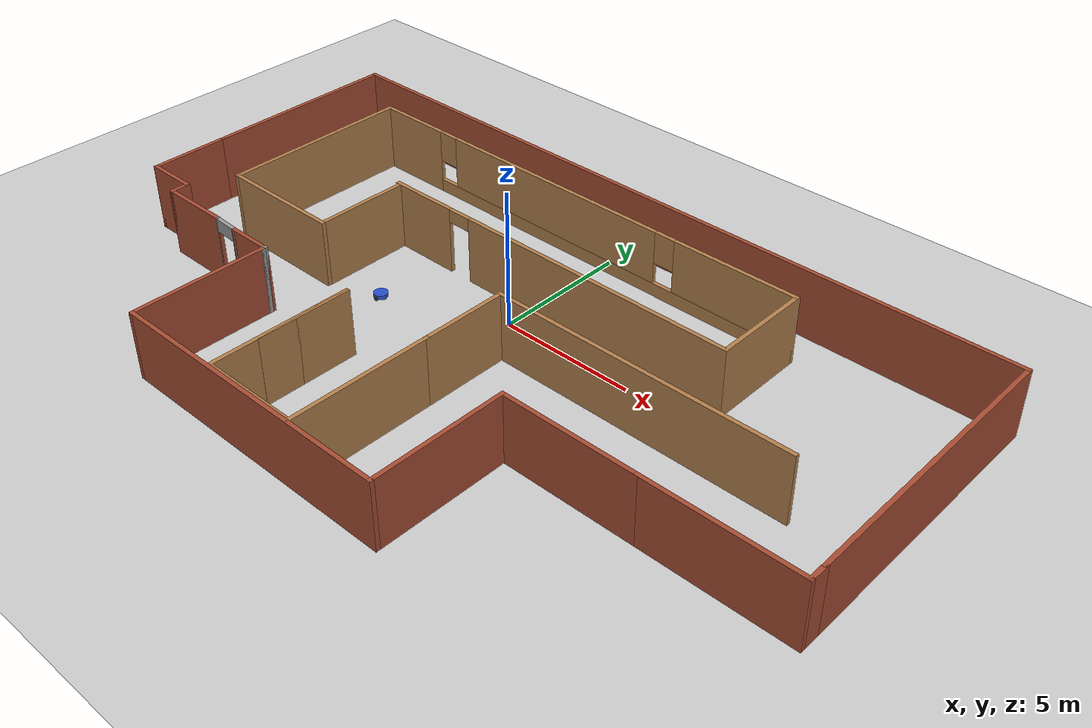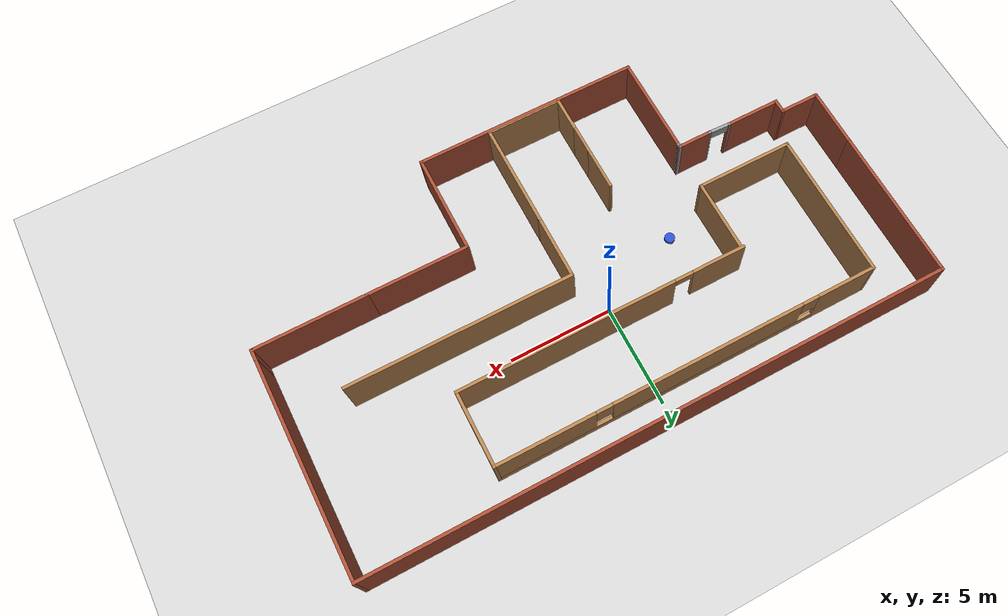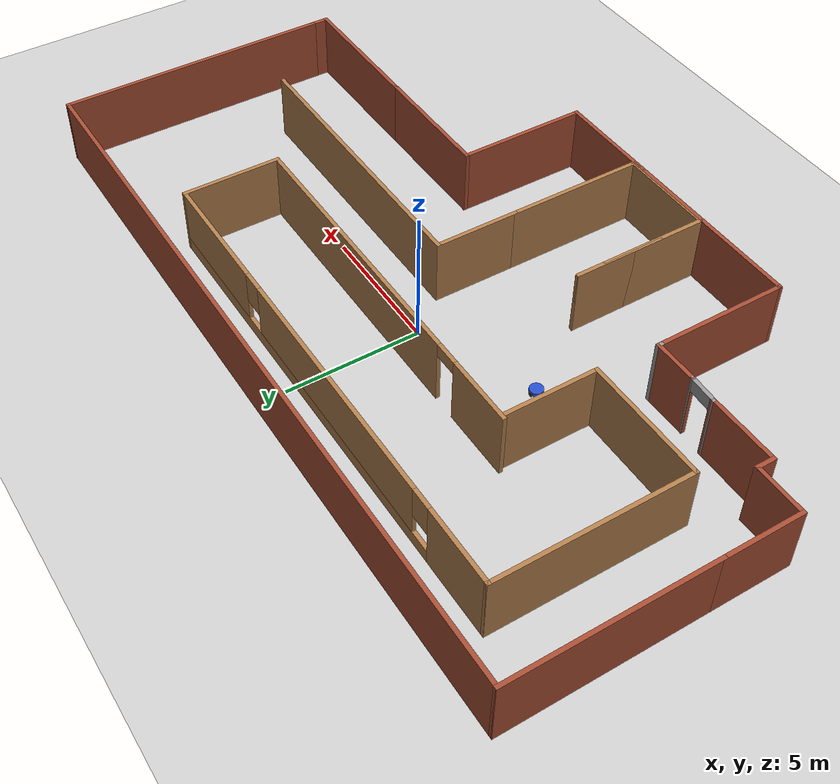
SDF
<sdf version="1.6">
 <world name="default">
  <model name="ground_plane">
   <static>1</static>
   <link name="link">
    <collision name="collision">
     <geometry><plane><normal>0 0 1</normal><size>100 100</size></plane></geometry>
     <surface>
      <contact><collide_bitmask>65535</collide_bitmask></contact>
      <friction><ode><mu>100</mu><mu2>50</mu2></ode></friction>
     </surface>
    </collision>
    <visual name="visual">
     <cast_shadows>0</cast_shadows>
     <geometry><plane><normal>0 0 1</normal><size>100 100</size></plane></geometry>
     <material>
      <script><uri>file://media/materials/scripts/gazebo.material</uri><name>Gazebo/Grey</name></script>
     </material>
    </visual>
   </link>
  </model>
  <model name="Building">
   <pose>0.678239 -1.82117 0 0 -0 0</pose>
   <link name="Wall_10">
    <collision name="Wall_10_Collision">
     <geometry><box><size>2.75 0.15 2.5</size></box></geometry>
     <pose>0 0 1.25 0 -0 0</pose>
    </collision>
    <visual name="Wall_10_Visual">
     <pose>0 0 1.25 0 -0 0</pose>
     <geometry><box><size>2.75 0.15 2.5</size></box></geometry>
     <material>
      <script><uri>file://media/materials/scripts/gazebo.material</uri><name>Gazebo/Bricks</name></script>
      <ambient>1 1 1 1</ambient>
     </material>
     <meta><layer>0</layer></meta>
    </visual>
    <pose>-10.9 -2.9 0 0 -0 0</pose>
   </link>
   <link name="Wall_16">
    <collision name="Wall_16_Collision">
     <geometry><box><size>7.5 0.15 2.5</size></box></geometry>
     <pose>0 0 1.25 0 -0 0</pose>
    </collision>
    <visual name="Wall_16_Visual">
     <pose>0 0 1.25 0 -0 0</pose>
     <geometry><box><size>7.5 0.15 2.5</size></box></geometry>
     <material>
      <script><uri>file://media/materials/scripts/gazebo.material</uri><name>Gazebo/Bricks</name></script>
      <ambient>1 1 1 1</ambient>
     </material>
     <meta><layer>0</layer></meta>
    </visual>
    <pose>-14.05 4.225 0 0 -0 1.5708</pose>
   </link>
   <link name="Wall_17">
    <collision name="Wall_17_Collision">
     <geometry><box><size>28.25 0.15 2.5</size></box></geometry>
     <pose>0 0 1.25 0 -0 0</pose>
    </collision>
    <visual name="Wall_17_Visual">
     <pose>0 0 1.25 0 -0 0</pose>
     <geometry><box><size>28.25 0.15 2.5</size></box></geometry>
     <material>
      <script><uri>file://media/materials/scripts/gazebo.material</uri><name>Gazebo/Bricks</name></script>
      <ambient>1 1 1 1</ambient>
     </material>
     <meta><layer>0</layer></meta>
    </visual>
    <pose>-0 7.9 0 0 -0 0</pose>
   </link>
   <link name="Wall_18">
    <collision name="Wall_18_Collision">
     <geometry><box><size>10.5 0.15 2.5</size></box></geometry>
     <pose>0 0 1.25 0 -0 0</pose>
    </collision>
    <visual name="Wall_18_Visual">
     <pose>0 0 1.25 0 -0 0</pose>
     <geometry><box><size>10.5 0.15 2.5</size></box></geometry>
     <material>
      <script><uri>file://media/materials/scripts/gazebo.material</uri><name>Gazebo/Bricks</name></script>
      <ambient>1 1 1 1</ambient>
     </material>
     <meta><layer>0</layer></meta>
    </visual>
    <pose>14.05 2.725 0 0 -0 -1.5708</pose>
   </link>
   <link name="Wall_19">
    <collision name="Wall_19_Collision">
     <geometry><box><size>0.75 0.15 2.5</size></box></geometry>
     <pose>0 0 1.25 0 -0 0</pose>
    </collision>
    <visual name="Wall_19_Visual">
     <pose>0 0 1.25 0 -0 0</pose>
     <geometry><box><size>0.75 0.15 2.5</size></box></geometry>
     <material>
      <script><uri>file://media/materials/scripts/gazebo.material</uri><name>Gazebo/Bricks</name></script>
      <ambient>1 1 1 1</ambient>
     </material>
     <meta><layer>0</layer></meta>
    </visual>
    <pose>14.05 -2.75 0 0 -0 -1.5708</pose>
   </link>
   <link name="Wall_20">
    <collision name="Wall_20_Collision">
     <geometry><box><size>5.5 0.15 2.5</size></box></geometry>
     <pose>0 0 1.25 0 -0 0</pose>
    </collision>
    <visual name="Wall_20_Visual">
     <pose>0 0 1.25 0 -0 0</pose>
     <geometry><box><size>5.5 0.15 2.5</size></box></geometry>
     <material>
      <script><uri>file://media/materials/scripts/gazebo.material</uri><name>Gazebo/Bricks</name></script>
      <ambient>1 1 1 1</ambient>
     </material>
     <meta><layer>0</layer></meta>
    </visual>
    <pose>11.375 -3.05 0 0 -0 3.14159</pose>
   </link>
   <link name="Wall_21">
    <collision name="Wall_21_Collision">
     <geometry><box><size>0.15 0.15 2.5</size></box></geometry>
     <pose>0 0 1.25 0 -0 0</pose>
    </collision>
    <visual name="Wall_21_Visual">
     <pose>0 0 1.25 0 -0 0</pose>
     <geometry><box><size>0.15 0.15 2.5</size></box></geometry>
     <material>
      <script><uri>file://media/materials/scripts/gazebo.material</uri><name>Gazebo/Grey</name></script>
      <ambient>1 1 1 1</ambient>
     </material>
     <meta><layer>0</layer></meta>
    </visual>
    <pose>8.7 -3.05 0 0 -0 0</pose>
   </link>
   <link name="Wall_22">
    <collision name="Wall_22_Collision">
     <geometry><box><size>5 0.15 2.5</size></box></geometry>
     <pose>0 0 1.25 0 -0 0</pose>
    </collision>
    <visual name="Wall_22_Visual">
     <pose>0 0 1.25 0 -0 0</pose>
     <geometry><box><size>5 0.15 2.5</size></box></geometry>
     <material>
      <script><uri>file://media/materials/scripts/gazebo.material</uri><name>Gazebo/Bricks</name></script>
      <ambient>1 1 1 1</ambient>
     </material>
     <meta><layer>0</layer></meta>
    </visual>
    <pose>6.275 -3.05 0 0 -0 3.14159</pose>
   </link>
   <link name="Wall_23">
    <collision name="Wall_23_Collision">
     <geometry><box><size>5 0.15 2.5</size></box></geometry>
     <pose>0 0 1.25 0 -0 0</pose>
    </collision>
    <visual name="Wall_23_Visual">
     <pose>0 0 1.25 0 -0 0</pose>
     <geometry><box><size>5 0.15 2.5</size></box></geometry>
     <material>
      <script><uri>file://media/materials/scripts/gazebo.material</uri><name>Gazebo/Bricks</name></script>
      <ambient>1 1 1 1</ambient>
     </material>
     <meta><layer>0</layer></meta>
    </visual>
    <pose>3.85 -5.475 0 0 -0 -1.5708</pose>
   </link>
   <link name="Wall_24">
    <collision name="Wall_24_Collision">
     <geometry><box><size>11 0.15 2.5</size></box></geometry>
     <pose>0 0 1.25 0 -0 0</pose>
    </collision>
    <visual name="Wall_24_Visual">
     <pose>0 0 1.25 0 -0 0</pose>
     <geometry><box><size>11 0.15 2.5</size></box></geometry>
     <material>
      <script><uri>file://media/materials/scripts/gazebo.material</uri><name>Gazebo/Bricks</name></script>
      <ambient>1 1 1 1</ambient>
     </material>
     <meta><layer>0</layer></meta>
    </visual>
    <pose>-1.575 -7.9 0 0 -0 3.14159</pose>
   </link>
   <link name="Wall_25">
    <collision name="Wall_25_Collision">
     <geometry><box><size>5 0.15 2.5</size></box></geometry>
     <pose>0 0 1.25 0 -0 0</pose>
    </collision>
    <visual name="Wall_25_Visual">
     <pose>0 0 1.25 0 -0 0</pose>
     <geometry><box><size>5 0.15 2.5</size></box></geometry>
     <material>
      <script><uri>file://media/materials/scripts/gazebo.material</uri><name>Gazebo/Bricks</name></script>
      <ambient>1 1 1 1</ambient>
     </material>
     <meta><layer>0</layer></meta>
    </visual>
    <pose>-7 -5.475 0 0 -0 1.5708</pose>
   </link>
   <link name="Wall_26">
    <collision name="Wall_26_Collision">
     <geometry><box><size>0.15 0.15 2.5</size></box></geometry>
     <pose>0 0 1.25 0 -0 0</pose>
    </collision>
    <visual name="Wall_26_Visual">
     <pose>0 0 1.25 0 -0 0</pose>
     <geometry><box><size>0.15 0.15 2.5</size></box></geometry>
     <material>
      <script><uri>file://media/materials/scripts/gazebo.material</uri><name>Gazebo/Grey</name></script>
      <ambient>1 1 1 1</ambient>
     </material>
     <meta><layer>0</layer></meta>
    </visual>
    <pose>-7 -3.05 0 0 -0 0</pose>
   </link>
   <link name="Wall_27">
    <collision name="Wall_27_Collision">
     <geometry><box><size>0.15 0.15 2.5</size></box></geometry>
     <pose>0 0 1.25 0 -0 0</pose>
    </collision>
    <visual name="Wall_27_Visual">
     <pose>0 0 1.25 0 -0 0</pose>
     <geometry><box><size>0.15 0.15 2.5</size></box></geometry>
     <material>
      <script><uri>file://media/materials/scripts/gazebo.material</uri><name>Gazebo/Grey</name></script>
      <ambient>1 1 1 1</ambient>
     </material>
     <meta><layer>0</layer></meta>
    </visual>
    <pose>-7 -3.05 0 0 -0 0</pose>
   </link>
   <link name="Wall_28">
    <collision name="Wall_28_Collision">
     <geometry><box><size>0.25 0.15 2.5</size></box></geometry>
     <pose>0 0 1.25 0 -0 0</pose>
    </collision>
    <visual name="Wall_28_Visual">
     <pose>0 0 1.25 0 -0 0</pose>
     <geometry><box><size>0.25 0.15 2.5</size></box></geometry>
     <material>
      <script><uri>file://media/materials/scripts/gazebo.material</uri><name>Gazebo/Grey</name></script>
      <ambient>1 1 1 1</ambient>
     </material>
     <meta><layer>0</layer></meta>
    </visual>
    <pose>-7 -3 0 0 -0 1.5708</pose>
   </link>
   <link name="Wall_29">
    <collision name="Wall_29_Collision">
     <geometry><box><size>1.75 0.15 2.5</size></box></geometry>
     <pose>0 0 1.25 0 -0 0</pose>
    </collision>
    <visual name="Wall_29_Visual">
     <pose>0 0 1.25 0 -0 0</pose>
     <geometry><box><size>1.75 0.15 2.5</size></box></geometry>
     <material>
      <script><uri>file://media/materials/scripts/gazebo.material</uri><name>Gazebo/Bricks</name></script>
      <ambient>1 1 1 1</ambient>
     </material>
     <meta><layer>0</layer></meta>
    </visual>
    <pose>-7.8 -2.95 0 0 -0 3.14159</pose>
   </link>
   <link name="Wall_31">
    <collision name="Wall_31_Collision">
     <geometry><box><size>3.5 0.15 2.5</size></box></geometry>
     <pose>0 0 1.25 0 -0 0</pose>
    </collision>
    <visual name="Wall_31_Visual">
     <pose>0 0 1.25 0 -0 0</pose>
     <geometry><box><size>3.5 0.15 2.5</size></box></geometry>
     <material>
      <script><uri>file://media/materials/scripts/gazebo.material</uri><name>Gazebo/Wood</name></script>
      <ambient>1 1 1 1</ambient>
     </material>
     <meta><layer>0</layer></meta>
    </visual>
    <pose>-6.82135 0.966771 0 0 -0 -1.5708</pose>
   </link>
   <link name="Wall_32">
    <collision name="Wall_32_Collision">
     <geometry><box><size>4.75 0.15 2.5</size></box></geometry>
     <pose>0 0 1.25 0 -0 0</pose>
    </collision>
    <visual name="Wall_32_Visual">
     <pose>0 0 1.25 0 -0 0</pose>
     <geometry><box><size>4.75 0.15 2.5</size></box></geometry>
     <material>
      <script><uri>file://media/materials/scripts/gazebo.material</uri><name>Gazebo/Wood</name></script>
      <ambient>1 1 1 1</ambient>
     </material>
     <meta><layer>0</layer></meta>
    </visual>
    <pose>-9.12135 -0.70823 0 0 -0 3.14159</pose>
   </link>
   <link name="Wall_33">
    <collision name="Wall_33_Collision">
     <geometry><box><size>7.25 0.15 2.5</size></box></geometry>
     <pose>0 0 1.25 0 -0 0</pose>
    </collision>
    <visual name="Wall_33_Visual">
     <pose>0 0 1.25 0 -0 0</pose>
     <geometry><box><size>7.25 0.15 2.5</size></box></geometry>
     <material>
      <script><uri>file://media/materials/scripts/gazebo.material</uri><name>Gazebo/Wood</name></script>
      <ambient>1 1 1 1</ambient>
     </material>
     <meta><layer>0</layer></meta>
    </visual>
    <pose>-11.4214 2.84177 0 0 -0 1.5708</pose>
   </link>
   <link name="Wall_34">
    <pose>-2.12135 6.39177 0 0 -0 0</pose>
    <visual name="Wall_34_Visual_0">
     <pose>-7.91049 0 1.25 0 -0 0</pose>
     <geometry><box><size>2.92903 0.15 2.5</size></box></geometry>
     <material>
      <script><uri>file://media/materials/scripts/gazebo.material</uri><name>Gazebo/Wood</name></script>
      <ambient>1 1 1 1</ambient>
     </material>
     <meta><layer>0</layer></meta>
    </visual>
    <collision name="Wall_34_Collision_0">
     <geometry><box><size>2.92903 0.15 2.5</size></box></geometry>
     <pose>-7.91049 0 1.25 0 -0 0</pose>
    </collision>
    <visual name="Wall_34_Visual_1">
     <pose>1.46452 0 0.25 0 -0 0</pose>
     <geometry><box><size>15.821 0.15 0.5</size></box></geometry>
     <material>
      <script><uri>file://media/materials/scripts/gazebo.material</uri><name>Gazebo/Wood</name></script>
      <ambient>1 1 1 1</ambient>
     </material>
     <meta><layer>0</layer></meta>
    </visual>
    <collision name="Wall_34_Collision_1">
     <geometry><box><size>15.821 0.15 0.5</size></box></geometry>
     <pose>1.46452 0 0.25 0 -0 0</pose>
    </collision>
    <visual name="Wall_34_Visual_2">
     <pose>-0.937402 0 1.5 0 -0 0</pose>
     <geometry><box><size>9.41714 0.15 2</size></box></geometry>
     <material>
      <script><uri>file://media/materials/scripts/gazebo.material</uri><name>Gazebo/Wood</name></script>
      <ambient>1 1 1 1</ambient>
     </material>
     <meta><layer>0</layer></meta>
    </visual>
    <collision name="Wall_34_Collision_2">
     <geometry><box><size>9.41714 0.15 2</size></box></geometry>
     <pose>-0.937402 0 1.5 0 -0 0</pose>
    </collision>
    <visual name="Wall_34_Visual_3">
     <pose>6.97308 0 1.5 0 -0 0</pose>
     <geometry><box><size>4.80383 0.15 2</size></box></geometry>
     <material>
      <script><uri>file://media/materials/scripts/gazebo.material</uri><name>Gazebo/Wood</name></script>
      <ambient>1 1 1 1</ambient>
     </material>
     <meta><layer>0</layer></meta>
    </visual>
    <collision name="Wall_34_Collision_3">
     <geometry><box><size>4.80383 0.15 2</size></box></geometry>
     <pose>6.97308 0 1.5 0 -0 0</pose>
    </collision>
    <visual name="Wall_34_Visual_4">
     <pose>-6.04597 0 1.9 0 -0 0</pose>
     <geometry><box><size>0.8 0.15 1.2</size></box></geometry>
     <material>
      <script><uri>file://media/materials/scripts/gazebo.material</uri><name>Gazebo/Wood</name></script>
      <ambient>1 1 1 1</ambient>
     </material>
     <meta><layer>0</layer></meta>
    </visual>
    <collision name="Wall_34_Collision_4">
     <geometry><box><size>0.8 0.15 1.2</size></box></geometry>
     <pose>-6.04597 0 1.9 0 -0 0</pose>
    </collision>
    <visual name="Wall_34_Visual_5">
     <pose>4.17117 0 1.9 0 -0 0</pose>
     <geometry><box><size>0.8 0.15 1.2</size></box></geometry>
     <material>
      <script><uri>file://media/materials/scripts/gazebo.material</uri><name>Gazebo/Wood</name></script>
      <ambient>1 1 1 1</ambient>
     </material>
     <meta><layer>0</layer></meta>
    </visual>
    <collision name="Wall_34_Collision_5">
     <geometry><box><size>0.8 0.15 1.2</size></box></geometry>
     <pose>4.17117 0 1.9 0 -0 0</pose>
    </collision>
   </link>
   <link name="Wall_35">
    <collision name="Wall_35_Collision">
     <geometry><box><size>3.75 0.15 2.5</size></box></geometry>
     <pose>0 0 1.25 0 -0 0</pose>
    </collision>
    <visual name="Wall_35_Visual">
     <pose>0 0 1.25 0 -0 0</pose>
     <geometry><box><size>3.75 0.15 2.5</size></box></geometry>
     <material>
      <script><uri>file://media/materials/scripts/gazebo.material</uri><name>Gazebo/Wood</name></script>
      <ambient>1 1 1 1</ambient>
     </material>
     <meta><layer>0</layer></meta>
    </visual>
    <pose>7.17865 4.59177 0 0 -0 -1.5708</pose>
   </link>
   <link name="Wall_36">
    <pose>0.128645 2.79177 0 0 -0 3.14159</pose>
    <visual name="Wall_36_Visual_0">
     <pose>-1.78083 0 1.25 0 -0 0</pose>
     <geometry><box><size>10.6883 0.15 2.5</size></box></geometry>
     <material>
      <script><uri>file://media/materials/scripts/gazebo.material</uri><name>Gazebo/Wood</name></script>
      <ambient>1 1 1 1</ambient>
     </material>
     <meta><layer>0</layer></meta>
    </visual>
    <collision name="Wall_36_Collision_0">
     <geometry><box><size>10.6883 0.15 2.5</size></box></geometry>
     <pose>-1.78083 0 1.25 0 -0 0</pose>
    </collision>
    <visual name="Wall_36_Visual_1">
     <pose>5.79417 0 1.25 0 -0 0</pose>
     <geometry><box><size>2.66166 0.15 2.5</size></box></geometry>
     <material>
      <script><uri>file://media/materials/scripts/gazebo.material</uri><name>Gazebo/Wood</name></script>
      <ambient>1 1 1 1</ambient>
     </material>
     <meta><layer>0</layer></meta>
    </visual>
    <collision name="Wall_36_Collision_1">
     <geometry><box><size>2.66166 0.15 2.5</size></box></geometry>
     <pose>5.79417 0 1.25 0 -0 0</pose>
    </collision>
    <visual name="Wall_36_Visual_2">
     <pose>4.01334 0 2.25 0 -0 0</pose>
     <geometry><box><size>0.9 0.15 0.5</size></box></geometry>
     <material>
      <script><uri>file://media/materials/scripts/gazebo.material</uri><name>Gazebo/Wood</name></script>
      <ambient>1 1 1 1</ambient>
     </material>
     <meta><layer>0</layer></meta>
    </visual>
    <collision name="Wall_36_Collision_2">
     <geometry><box><size>0.9 0.15 0.5</size></box></geometry>
     <pose>4.01334 0 2.25 0 -0 0</pose>
    </collision>
   </link>
   <link name="Wall_38">
    <pose>-9.1 -2.925 0 0 -0 -0.049958</pose>
    <visual name="Wall_38_Visual_0">
     <pose>-0.521361 0 1.25 0 -0 0</pose>
     <geometry><box><size>0.108527 0.15 2.5</size></box></geometry>
     <material>
      <script><uri>file://media/materials/scripts/gazebo.material</uri><name>Gazebo/Grey</name></script>
      <ambient>1 1 1 1</ambient>
     </material>
     <meta><layer>0</layer></meta>
    </visual>
    <collision name="Wall_38_Collision_0">
     <geometry><box><size>0.108527 0.15 2.5</size></box></geometry>
     <pose>-0.521361 0 1.25 0 -0 0</pose>
    </collision>
    <visual name="Wall_38_Visual_1">
     <pose>0.504264 0 1.25 0 -0 0</pose>
     <geometry><box><size>0.142722 0.15 2.5</size></box></geometry>
     <material>
      <script><uri>file://media/materials/scripts/gazebo.material</uri><name>Gazebo/Grey</name></script>
      <ambient>1 1 1 1</ambient>
     </material>
     <meta><layer>0</layer></meta>
    </visual>
    <collision name="Wall_38_Collision_1">
     <geometry><box><size>0.142722 0.15 2.5</size></box></geometry>
     <pose>0.504264 0 1.25 0 -0 0</pose>
    </collision>
    <visual name="Wall_38_Visual_2">
     <pose>-0.017097 0 2.25 0 -0 0</pose>
     <geometry><box><size>0.9 0.15 0.5</size></box></geometry>
     <material>
      <script><uri>file://media/materials/scripts/gazebo.material</uri><name>Gazebo/Grey</name></script>
      <ambient>1 1 1 1</ambient>
     </material>
     <meta><layer>0</layer></meta>
    </visual>
    <collision name="Wall_38_Collision_2">
     <geometry><box><size>0.9 0.15 0.5</size></box></geometry>
     <pose>-0.017097 0 2.25 0 -0 0</pose>
    </collision>
   </link>
   <link name="Wall_41">
    <collision name="Wall_41_Collision">
     <geometry><box><size>3.5 0.15 2.5</size></box></geometry>
     <pose>0 0 1.25 0 -0 0</pose>
    </collision>
    <visual name="Wall_41_Visual">
     <pose>0 0 1.25 0 -0 0</pose>
     <geometry><box><size>3.5 0.15 2.5</size></box></geometry>
     <material>
      <script><uri>file://media/materials/scripts/gazebo.material</uri><name>Gazebo/Wood</name></script>
      <ambient>1 1 1 1</ambient>
     </material>
     <meta><layer>0</layer></meta>
    </visual>
    <pose>-3.1974 -4.40362 0 0 -0 1.5708</pose>
   </link>
   <link name="Wall_42">
    <collision name="Wall_42_Collision">
     <geometry><box><size>5.25 0.15 2.5</size></box></geometry>
     <pose>0 0 1.25 0 -0 0</pose>
    </collision>
    <visual name="Wall_42_Visual">
     <pose>0 0 1.25 0 -0 0</pose>
     <geometry><box><size>5.25 0.15 2.5</size></box></geometry>
     <material>
      <script><uri>file://media/materials/scripts/gazebo.material</uri><name>Gazebo/Wood</name></script>
      <ambient>1 1 1 1</ambient>
     </material>
     <meta><layer>0</layer></meta>
    </visual>
    <pose>-3.1974 -5.27862 0 0 -0 -1.5708</pose>
   </link>
   <link name="Wall_43">
    <collision name="Wall_43_Collision">
     <geometry><box><size>3.75 0.15 2.5</size></box></geometry>
     <pose>0 0 1.25 0 -0 0</pose>
    </collision>
    <visual name="Wall_43_Visual">
     <pose>0 0 1.25 0 -0 0</pose>
     <geometry><box><size>3.75 0.15 2.5</size></box></geometry>
     <material>
      <script><uri>file://media/materials/scripts/gazebo.material</uri><name>Gazebo/Wood</name></script>
      <ambient>1 1 1 1</ambient>
     </material>
     <meta><layer>0</layer></meta>
    </visual>
    <pose>-1.3974 -7.82862 0 0 -0 0</pose>
   </link>
   <link name="Wall_44">
    <collision name="Wall_44_Collision">
     <geometry><box><size>5.25 0.15 2.5</size></box></geometry>
     <pose>0 0 1.25 0 -0 0</pose>
    </collision>
    <visual name="Wall_44_Visual">
     <pose>0 0 1.25 0 -0 0</pose>
     <geometry><box><size>5.25 0.15 2.5</size></box></geometry>
     <material>
      <script><uri>file://media/materials/scripts/gazebo.material</uri><name>Gazebo/Wood</name></script>
      <ambient>1 1 1 1</ambient>
     </material>
     <meta><layer>0</layer></meta>
    </visual>
    <pose>0.4026 -5.27862 0 0 -0 1.5708</pose>
   </link>
   <link name="Wall_45">
    <collision name="Wall_45_Collision">
     <geometry><box><size>3.25 0.15 2.5</size></box></geometry>
     <pose>0 0 1.25 0 -0 0</pose>
    </collision>
    <visual name="Wall_45_Visual">
     <pose>0 0 1.25 0 -0 0</pose>
     <geometry><box><size>3.25 0.15 2.5</size></box></geometry>
     <material>
      <script><uri>file://media/materials/scripts/gazebo.material</uri><name>Gazebo/Wood</name></script>
      <ambient>1 1 1 1</ambient>
     </material>
     <meta><layer>0</layer></meta>
    </visual>
    <pose>0.4026 -1.17862 0 0 -0 1.5708</pose>
   </link>
   <link name="Wall_46">
    <collision name="Wall_46_Collision">
     <geometry><box><size>11 0.15 2.5</size></box></geometry>
     <pose>0 0 1.25 0 -0 0</pose>
    </collision>
    <visual name="Wall_46_Visual">
     <pose>0 0 1.25 0 -0 0</pose>
     <geometry><box><size>11 0.15 2.5</size></box></geometry>
     <material>
      <script><uri>file://media/materials/scripts/gazebo.material</uri><name>Gazebo/Wood</name></script>
      <ambient>1 1 1 1</ambient>
     </material>
     <meta><layer>0</layer></meta>
    </visual>
    <pose>5.8276 0.371382 0 0 -0 0</pose>
   </link>
   <link name="Wall_7">
    <collision name="Wall_7_Collision">
     <geometry><box><size>3 0.15 2.5</size></box></geometry>
     <pose>0 0 1.25 0 -0 0</pose>
    </collision>
    <visual name="Wall_7_Visual">
     <pose>0 0 1.25 0 -0 0</pose>
     <geometry><box><size>3 0.15 2.5</size></box></geometry>
     <material>
      <script><uri>file://media/materials/scripts/gazebo.material</uri><name>Gazebo/Bricks</name></script>
      <ambient>1 1 1 1</ambient>
     </material>
     <meta><layer>0</layer></meta>
    </visual>
    <pose>-14.05 -0.875 0 0 -0 -1.5708</pose>
   </link>
   <link name="Wall_8">
    <collision name="Wall_8_Collision">
     <geometry><box><size>2 0.15 2.5</size></box></geometry>
     <pose>0 0 1.25 0 -0 0</pose>
    </collision>
    <visual name="Wall_8_Visual">
     <pose>0 0 1.25 0 -0 0</pose>
     <geometry><box><size>2 0.15 2.5</size></box></geometry>
     <material>
      <script><uri>file://media/materials/scripts/gazebo.material</uri><name>Gazebo/Bricks</name></script>
      <ambient>1 1 1 1</ambient>
     </material>
     <meta><layer>0</layer></meta>
    </visual>
    <pose>-13.125 -2.3 0 0 -0 0</pose>
   </link>
   <link name="Wall_9">
    <collision name="Wall_9_Collision">
     <geometry><box><size>0.75 0.15 2.5</size></box></geometry>
     <pose>0 0 1.25 0 -0 0</pose>
    </collision>
    <visual name="Wall_9_Visual">
     <pose>0 0 1.25 0 -0 0</pose>
     <geometry><box><size>0.75 0.15 2.5</size></box></geometry>
     <material>
      <script><uri>file://media/materials/scripts/gazebo.material</uri><name>Gazebo/Bricks</name></script>
      <ambient>1 1 1 1</ambient>
     </material>
     <meta><layer>0</layer></meta>
    </visual>
    <pose>-12.2 -2.6 0 0 -0 -1.5708</pose>
   </link>
   <static>1</static>
  </model>
  <model name="HumanoidRobot">
   <link name="link_0">
    <pose>0 -0 0.04 0 -0 0</pose>
    <inertial>
     <mass>1</mass>
     <inertia><ixx>0.145833</ixx><ixy>0</ixy><ixz>0</ixz><iyy>0.145833</iyy><iyz>0</iyz><izz>0.125</izz></inertia>
    </inertial>
    <visual name="visual">
     <geometry><cylinder><radius>0.25</radius><length>0.15</length></cylinder></geometry>
     <material>
      <lighting>1</lighting>
      <script><uri>file://media/materials/scripts/gazebo.material</uri><name>Gazebo/Blue</name></script>
      <ambient>0.13 0.44 0.7 1</ambient>
      <diffuse>0 0 0 1</diffuse>
      <specular>0.1 0.1 0.1 1</specular>
      <emissive>0 0 0 1</emissive>
      <shader type="vertex"><normal_map>__default__</normal_map></shader>
     </material>
    </visual>
    <collision name="collision">
     <geometry><cylinder><radius>0.25</radius><length>0.15</length></cylinder></geometry>
     <surface>
      <friction>
       <ode><mu>1</mu><mu2>1</mu2><fdir1>0 0 0</fdir1><slip1>0</slip1><slip2>0</slip2></ode>
       <torsional>
        <coefficient>1</coefficient>
        <patch_radius>0</patch_radius>
        <surface_radius>0</surface_radius>
        <use_patch_radius>1</use_patch_radius>
        <ode><slip>0</slip></ode>
       </torsional>
      </friction>
      <bounce><restitution_coefficient>0</restitution_coefficient><threshold>1e+06</threshold></bounce>
      <contact>
       <collide_without_contact>0</collide_without_contact>
       <collide_without_contact_bitmask>1</collide_without_contact_bitmask>
       <collide_bitmask>1</collide_bitmask>
       <ode>
        <soft_cfm>0</soft_cfm>
        <soft_erp>0.2</soft_erp>
        <kp>1e+13</kp>
        <kd>1</kd>
        <max_vel>0.01</max_vel>
        <min_depth>0</min_depth>
       </ode>
       <bullet>
        <split_impulse>1</split_impulse>
        <split_impulse_penetration_threshold>-0.01</split_impulse_penetration_threshold>
        <soft_cfm>0</soft_cfm>
        <soft_erp>0.2</soft_erp>
        <kp>1e+13</kp>
        <kd>1</kd>
       </bullet>
      </contact>
     </surface>
    </collision>
   </link>
   <link name="link_1">
    <pose>0 0.2 -0.01 0 -0 0</pose>
    <inertial>
     <mass>1</mass>
     <inertia><ixx>0.145833</ixx><ixy>0</ixy><ixz>0</ixz><iyy>0.145833</iyy><iyz>0</iyz><izz>0.125</izz></inertia>
    </inertial>
    <visual name="visual">
     <pose>0 0 0 1.5708 -0 0</pose>
     <geometry><cylinder><radius>0.1</radius><length>0.1</length></cylinder></geometry>
     <material>
      <lighting>1</lighting>
      <script><uri>file://media/materials/scripts/gazebo.material</uri><name>Gazebo/Black</name></script>
      <ambient>0 0 0 1</ambient>
      <diffuse>0 0 0 1</diffuse>
      <specular>0.1 0.1 0.1 1</specular>
      <emissive>0 0 0 1</emissive>
      <shader type="vertex"><normal_map>__default__</normal_map></shader>
     </material>
    </visual>
    <collision name="collision">
     <pose>0 0 0 1.5708 -0 0</pose>
     <geometry><cylinder><radius>0.1</radius><length>0.1</length></cylinder></geometry>
     <surface>
      <friction>
       <ode><mu>1</mu><mu2>1</mu2><fdir1>0 0 0</fdir1><slip1>0</slip1><slip2>0</slip2></ode>
       <torsional>
        <coefficient>1</coefficient>
        <patch_radius>0</patch_radius>
        <surface_radius>0</surface_radius>
        <use_patch_radius>1</use_patch_radius>
        <ode><slip>0</slip></ode>
       </torsional>
      </friction>
      <bounce><restitution_coefficient>0</restitution_coefficient><threshold>1e+06</threshold></bounce>
      <contact>
       <collide_without_contact>0</collide_without_contact>
       <collide_without_contact_bitmask>1</collide_without_contact_bitmask>
       <collide_bitmask>1</collide_bitmask>
       <ode>
        <soft_cfm>0</soft_cfm>
        <soft_erp>0.2</soft_erp>
        <kp>1e+13</kp>
        <kd>1</kd>
        <max_vel>0.01</max_vel>
        <min_depth>0</min_depth>
       </ode>
       <bullet>
        <split_impulse>1</split_impulse>
        <split_impulse_penetration_threshold>-0.01</split_impulse_penetration_threshold>
        <soft_cfm>0</soft_cfm>
        <soft_erp>0.2</soft_erp>
        <kp>1e+13</kp>
        <kd>1</kd>
       </bullet>
      </contact>
     </surface>
    </collision>
   </link>
   <link name="link_1_clone">
    <pose>-0 -0.2 -0.01 0 -0 0</pose>
    <inertial>
     <mass>1</mass>
     <inertia><ixx>0.145833</ixx><ixy>0</ixy><ixz>0</ixz><iyy>0.145833</iyy><iyz>0</iyz><izz>0.125</izz></inertia>
    </inertial>
    <visual name="visual">
     <pose>0 0 0 1.5708 -0 0</pose>
     <geometry><cylinder><radius>0.1</radius><length>0.1</length></cylinder></geometry>
     <material>
      <lighting>1</lighting>
      <script><uri>file://media/materials/scripts/gazebo.material</uri><name>Gazebo/Black</name></script>
      <ambient>0 0 0 1</ambient>
      <diffuse>0 0 0 1</diffuse>
      <specular>0.1 0.1 0.1 1</specular>
      <emissive>0 0 0 1</emissive>
      <shader type="vertex"><normal_map>__default__</normal_map></shader>
     </material>
    </visual>
    <collision name="collision">
     <pose>0 0 0 1.5708 -0 0</pose>
     <geometry><cylinder><radius>0.1</radius><length>0.1</length></cylinder></geometry>
     <surface>
      <friction>
       <ode><mu>1</mu><mu2>1</mu2><fdir1>0 0 0</fdir1><slip1>0</slip1><slip2>0</slip2></ode>
       <torsional>
        <coefficient>1</coefficient>
        <patch_radius>0</patch_radius>
        <surface_radius>0</surface_radius>
        <use_patch_radius>1</use_patch_radius>
        <ode><slip>0</slip></ode>
       </torsional>
      </friction>
      <bounce><restitution_coefficient>0</restitution_coefficient><threshold>1e+06</threshold></bounce>
      <contact>
       <collide_without_contact>0</collide_without_contact>
       <collide_without_contact_bitmask>1</collide_without_contact_bitmask>
       <collide_bitmask>1</collide_bitmask>
       <ode>
        <soft_cfm>0</soft_cfm>
        <soft_erp>0.2</soft_erp>
        <kp>1e+13</kp>
        <kd>1</kd>
        <max_vel>0.01</max_vel>
        <min_depth>0</min_depth>
       </ode>
       <bullet>
        <split_impulse>1</split_impulse>
        <split_impulse_penetration_threshold>-0.01</split_impulse_penetration_threshold>
        <soft_cfm>0</soft_cfm>
        <soft_erp>0.2</soft_erp>
        <kp>1e+13</kp>
        <kd>1</kd>
       </bullet>
      </contact>
     </surface>
    </collision>
   </link>
   <link name="link_2">
    <pose>-0.15 0 -0.01 0 -0 0</pose>
    <inertial>
     <mass>1</mass>
     <inertia><ixx>0.1</ixx><ixy>0</ixy><ixz>0</ixz><iyy>0.1</iyy><iyz>0</iyz><izz>0.1</izz></inertia>
    </inertial>
    <visual name="visual">
     <geometry><sphere><radius>0.1</radius></sphere></geometry>
     <material>
      <lighting>1</lighting>
      <script><uri>file://media/materials/scripts/gazebo.material</uri><name>Gazebo/Grey</name></script>
      <ambient>0.3 0.3 0.3 1</ambient>
      <diffuse>0.7 0.7 0.7 1</diffuse>
      <specular>0.01 0.01 0.01 1</specular>
      <emissive>0 0 0 1</emissive>
      <shader type="vertex"><normal_map>__default__</normal_map></shader>
     </material>
    </visual>
    <collision name="collision">
     <geometry><sphere><radius>0.1</radius></sphere></geometry>
     <surface>
      <friction>
       <ode><mu>0</mu><mu2>0</mu2><fdir1>0 0 0</fdir1><slip1>1</slip1><slip2>1</slip2></ode>
       <torsional>
        <coefficient>1</coefficient>
        <patch_radius>0</patch_radius>
        <surface_radius>0</surface_radius>
        <use_patch_radius>1</use_patch_radius>
        <ode><slip>0</slip></ode>
       </torsional>
      </friction>
      <bounce><restitution_coefficient>0</restitution_coefficient><threshold>1e+06</threshold></bounce>
      <contact>
       <collide_without_contact>0</collide_without_contact>
       <collide_without_contact_bitmask>1</collide_without_contact_bitmask>
       <collide_bitmask>1</collide_bitmask>
       <ode>
        <soft_cfm>0</soft_cfm>
        <soft_erp>0.2</soft_erp>
        <kp>1e+13</kp>
        <kd>1</kd>
        <max_vel>0.01</max_vel>
        <min_depth>0</min_depth>
       </ode>
       <bullet>
        <split_impulse>1</split_impulse>
        <split_impulse_penetration_threshold>-0.01</split_impulse_penetration_threshold>
        <soft_cfm>0</soft_cfm>
        <soft_erp>0.2</soft_erp>
        <kp>1e+13</kp>
        <kd>1</kd>
       </bullet>
      </contact>
     </surface>
    </collision>
   </link>
   <link name="link_2_clone">
    <pose>0.15 0 -0.01 0 -0 0</pose>
    <inertial>
     <mass>1</mass>
     <inertia><ixx>0.1</ixx><ixy>0</ixy><ixz>0</ixz><iyy>0.1</iyy><iyz>0</iyz><izz>0.1</izz></inertia>
    </inertial>
    <visual name="visual">
     <geometry><sphere><radius>0.1</radius></sphere></geometry>
     <material>
      <lighting>1</lighting>
      <script><uri>file://media/materials/scripts/gazebo.material</uri><name>Gazebo/Grey</name></script>
      <ambient>0.3 0.3 0.3 1</ambient>
      <diffuse>0.7 0.7 0.7 1</diffuse>
      <specular>0.01 0.01 0.01 1</specular>
      <emissive>0 0 0 1</emissive>
      <shader type="vertex"><normal_map>__default__</normal_map></shader>
     </material>
    </visual>
    <collision name="collision">
     <geometry><sphere><radius>0.1</radius></sphere></geometry>
     <surface>
      <friction>
       <ode><mu>0</mu><mu2>0</mu2><fdir1>0 0 0</fdir1><slip1>1</slip1><slip2>1</slip2></ode>
       <torsional>
        <coefficient>1</coefficient>
        <patch_radius>0</patch_radius>
        <surface_radius>0</surface_radius>
        <use_patch_radius>1</use_patch_radius>
        <ode><slip>0</slip></ode>
       </torsional>
      </friction>
      <bounce><restitution_coefficient>0</restitution_coefficient><threshold>1e+06</threshold></bounce>
      <contact>
       <collide_without_contact>0</collide_without_contact>
       <collide_without_contact_bitmask>1</collide_without_contact_bitmask>
       <collide_bitmask>1</collide_bitmask>
       <ode>
        <soft_cfm>0</soft_cfm>
        <soft_erp>0.2</soft_erp>
        <kp>1e+13</kp>
        <kd>1</kd>
        <max_vel>0.01</max_vel>
        <min_depth>0</min_depth>
       </ode>
       <bullet>
        <split_impulse>1</split_impulse>
        <split_impulse_penetration_threshold>-0.01</split_impulse_penetration_threshold>
        <soft_cfm>0</soft_cfm>
        <soft_erp>0.2</soft_erp>
        <kp>1e+13</kp>
        <kd>1</kd>
       </bullet>
      </contact>
     </surface>
    </collision>
   </link>
   <joint name="link_0_JOINT_1" type="revolute">
    <parent>link_0</parent>
    <child>link_1</child>
    <axis>
     <xyz>0 -1 0</xyz>
     <limit>
      <lower>-1.79769e+308</lower>
      <upper>1.79769e+308</upper>
      <effort>-1</effort>
      <velocity>-1</velocity>
     </limit>
     <dynamics>
      <spring_reference>0</spring_reference>
      <spring_stiffness>0</spring_stiffness>
      <damping>0</damping>
      <friction>0</friction>
     </dynamics>
     <use_parent_model_frame>0</use_parent_model_frame>
    </axis>
    <physics>
     <ode><limit><cfm>0</cfm><erp>0.2</erp></limit><suspension><cfm>0</cfm><erp>0.2</erp></suspension></ode>
    </physics>
   </joint>
   <joint name="link_0_JOINT_2" type="revolute">
    <parent>link_0</parent>
    <child>link_1_clone</child>
    <pose>0 -0.01 0 0 -0 0</pose>
    <axis>
     <xyz>0 1 0</xyz>
     <limit>
      <lower>-1.79769e+308</lower>
      <upper>1.79769e+308</upper>
      <effort>-1</effort>
      <velocity>-1</velocity>
     </limit>
     <dynamics>
      <spring_reference>0</spring_reference>
      <spring_stiffness>0</spring_stiffness>
      <damping>0</damping>
      <friction>0</friction>
     </dynamics>
     <use_parent_model_frame>0</use_parent_model_frame>
    </axis>
    <physics>
     <ode><limit><cfm>0</cfm><erp>0.2</erp></limit><suspension><cfm>0</cfm><erp>0.2</erp></suspension></ode>
    </physics>
   </joint>
   <joint name="link_0_JOINT_4" type="fixed">
    <parent>link_0</parent>
    <child>link_2</child>
    <physics>
     <ode><limit><cfm>0</cfm><erp>0.2</erp></limit><suspension><cfm>0</cfm><erp>0.2</erp></suspension></ode>
    </physics>
   </joint>
   <joint name="link_0_JOINT_5" type="fixed">
    <parent>link_0</parent>
    <child>link_2_clone</child>
    <pose>0 0 -0.01 0 -0 0</pose>
    <physics>
     <ode><limit><cfm>0</cfm><erp>0.2</erp></limit><suspension><cfm>0</cfm><erp>0.2</erp></suspension></ode>
    </physics>
   </joint>
   <static>0</static>
   <pose>-4.24568 -1.83183 0.11 0 -0 0.032076</pose>
  </model>
 </world>
</sdf>
